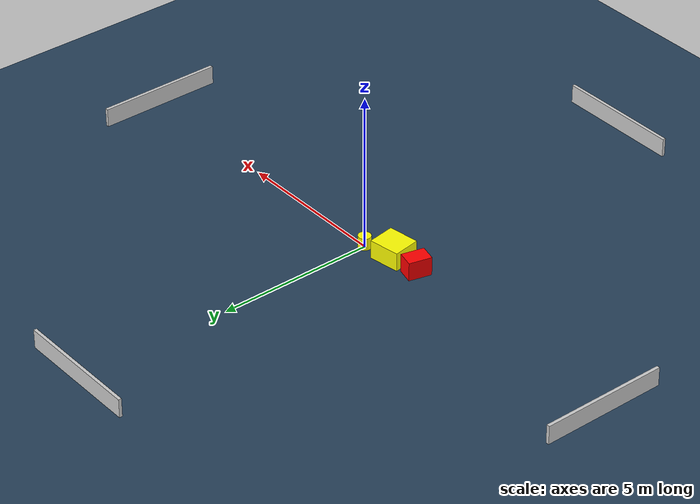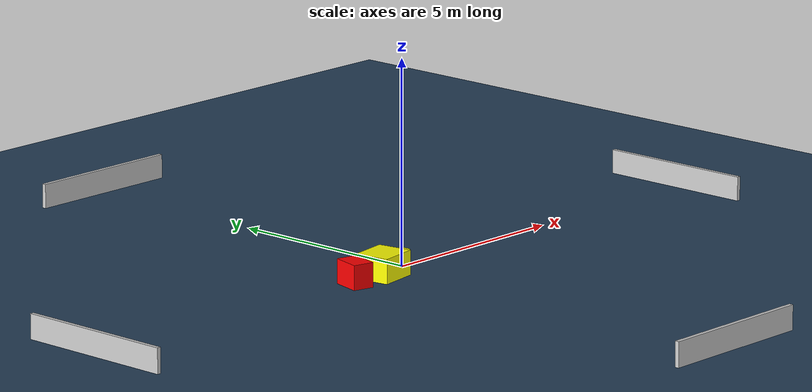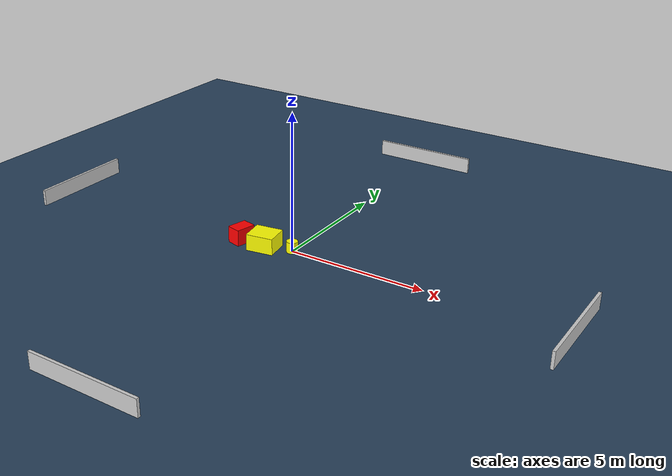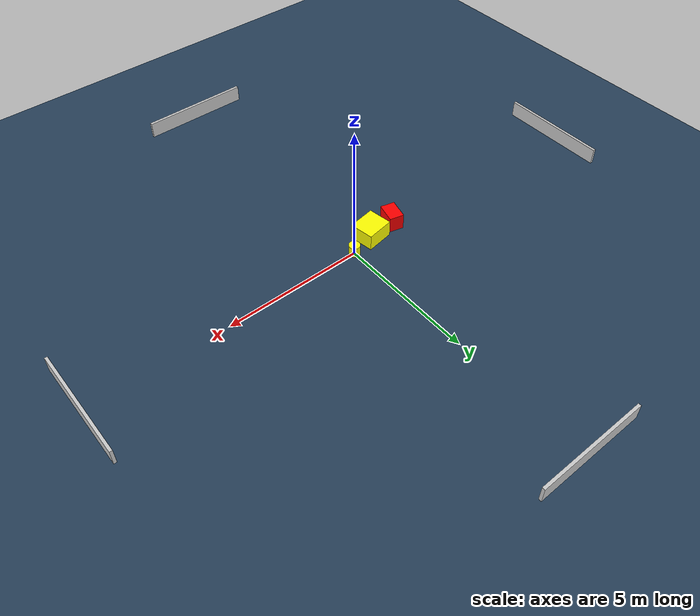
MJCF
<?xml version="1.0" ?>
<mujoco model="generated_environment">
  <option timestep="0.01" integrator="RK4" cone="elliptic"/>
  <default>
    <geom density="1"/>
  </default>
  <asset>
    <texture builtin="gradient" height="3072" name="skybox" rgb1="0.3 0.5 0.7" rgb2="0 0 0" type="skybox" width="512"/>
    <texture builtin="checker" height="300" name="groundplane" rgb1="0.2 0.3 0.4" rgb2="0.1 0.2 0.3" type="2d" width="300"/>
    <material name="groundplane" reflectance="0.2" texrepeat="5 5" texture="groundplane"/>
  </asset>
  <worldbody>
    <light dir="0 0 -1" directional="true" pos="0 0 1.5"/>
    <geom condim="3" friction="0.5 0.005 0.001" material="groundplane" name="floor" pos="0 0 0" size="0 0 0.05" type="plane"/>
    <body name="walls">
      <geom name="wall_1" condim="4" pos="-10.0 0.0 0.3" rgba="0.800000011920929 0.800000011920929 0.800000011920929 1.0" size="0.05 2.0 0.3" type="box"/>
      <geom name="wall_2" condim="4" pos="10.0 0.0 0.3" rgba="0.800000011920929 0.800000011920929 0.800000011920929 1.0" size="0.05 2.0 0.3" type="box"/>
      <geom name="wall_3" condim="4" pos="0.0 -10.0 0.3" rgba="0.800000011920929 0.800000011920929 0.800000011920929 1.0" size="2.0 0.05 0.3" type="box"/>
      <geom name="wall_4" condim="4" pos="0.0 10.0 0.3" rgba="0.800000011920929 0.800000011920929 0.800000011920929 1.0" size="2.0 0.05 0.3" type="box"/>
    </body>
    <body name="robot">
      <joint name="joint_x" type="slide" pos="0 0 0" axis="1 0 0"/>
      <joint name="joint_y" type="slide" pos="0 0 0" axis="0 1 0"/>
      <geom name="robot" type="cylinder" pos="0.0 0.0 0.2" size="0.2 0.2 0.0" mass="5.0" friction="1.0 0.005 0.0001" condim="4" rgba="1.0 1.0 0.0 1.0"/>
    </body>
    <body name="obstacle_1_movable">
      <geom name="obstacle_1_movable" condim="4" pos="-0.9583941218192282 -0.28852115417111446 0.3" euler="0 0 279.0020925597288" friction="0.0 0.005 0.001" rgba="1.0 1.0 0.0 1.0" size="0.4342410260047097 0.49448499457478473 0.3" type="box" mass="0.1"/>
      <joint type="free"/>
    </body>
    <body name="obstacle_2_static">
      <geom name="obstacle_2_static" condim="4" pos="-1.9371844039049073 -0.30966862352023394 0.3" euler="0 0 255.8425068720283" friction="0.0 0.005 0.001" rgba="1.0 0.0 0.0 1.0" size="0.3647284787241803 0.26121777378342415 0.3" type="box"/>
    </body>
  </worldbody>
  <actuator>
    <motor name="actuator_x" joint="joint_x" gear="1" ctrlrange="-1 1"/>
    <motor name="actuator_y" joint="joint_y" gear="1" ctrlrange="-1 1"/>
  </actuator>
</mujoco>
